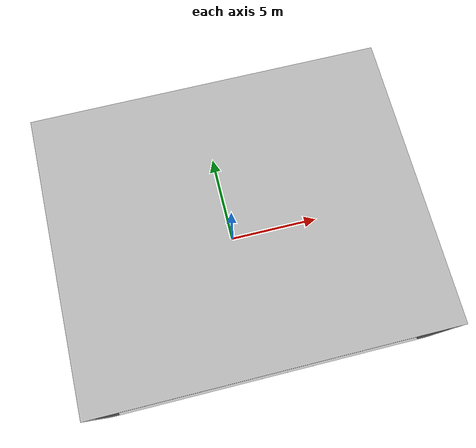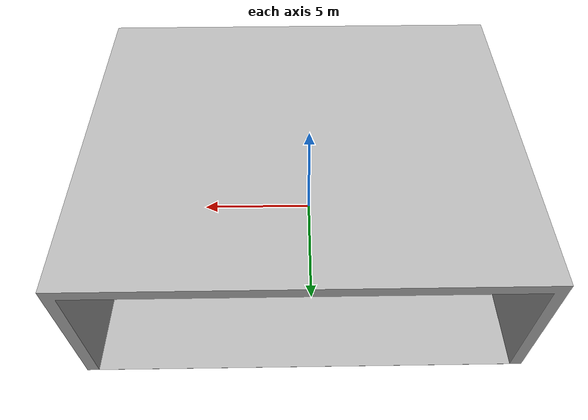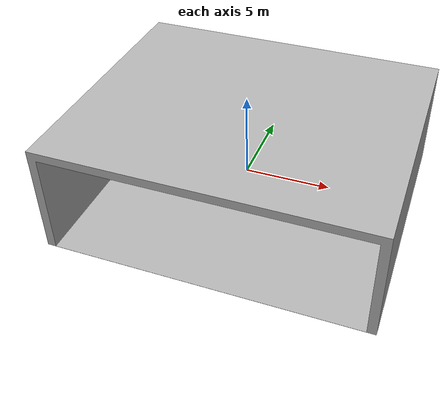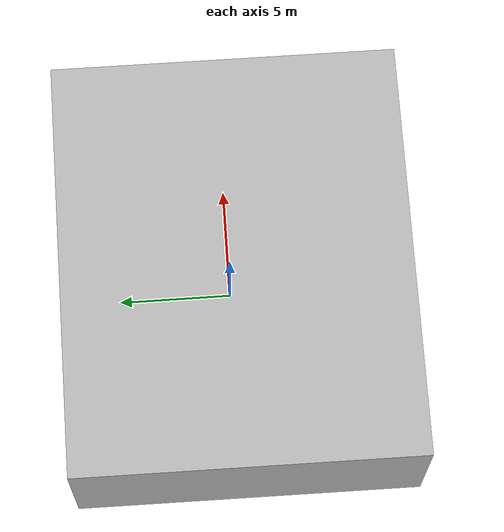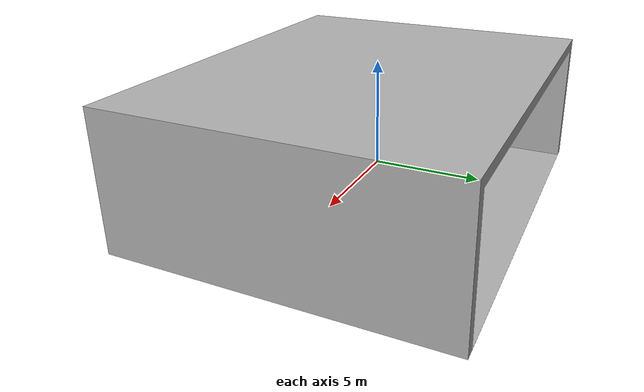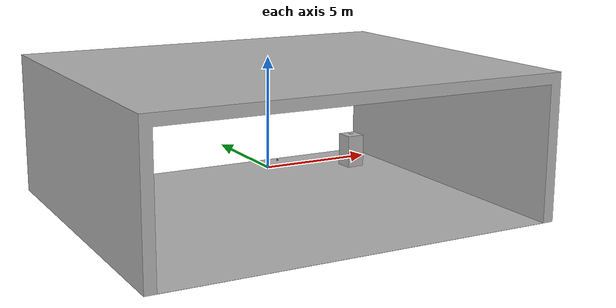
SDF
<sdf version="1.9">
 <world name="iris_runway">
  <physics name="1ms" type="bullet">
   <max_step_size>0.001</max_step_size>
   <real_time_factor>1.0</real_time_factor>
  </physics>
  <plugin filename="gz-sim-physics-system" name="gz::sim::systems::Physics"/>
  <plugin filename="gz-sim-sensors-system" name="gz::sim::systems::Sensors">
   <render_engine>ogre2</render_engine>
  </plugin>
  <plugin filename="gz-sim-user-commands-system" name="gz::sim::systems::UserCommands"/>
  <plugin filename="gz-sim-scene-broadcaster-system" name="gz::sim::systems::SceneBroadcaster"/>
  <plugin filename="gz-sim-imu-system" name="gz::sim::systems::Imu"/>
  <plugin filename="gz-sim-navsat-system" name="gz::sim::systems::NavSat"/>
  <scene><ambient>1.0 1.0 1.0</ambient><background>0.8 0.8 0.8</background><grid>false</grid></scene>
  <spherical_coordinates>
   <latitude_deg>-35.363262</latitude_deg>
   <longitude_deg>149.165237</longitude_deg>
   <elevation>584</elevation>
   <heading_deg>0</heading_deg>
   <surface_model>EARTH_WGS84</surface_model>
  </spherical_coordinates>
  <atmosphere type="adiabatic">
   <temperature>0</temperature>
   <temperature_gradient>0.1</temperature_gradient>
  </atmosphere>
  <light type="directional" name="sun">
   <pose>0 0 10 0 0 0</pose>
   <diffuse>0.8 0.8 0.8 1</diffuse>
   <specular>0.8 0.8 0.8 1</specular>
   <attenuation>
    <range>1000</range>
    <constant>0.9</constant>
    <linear>0.01</linear>
    <quadratic>0.001</quadratic>
   </attenuation>
   <direction>-0.5 0.1 -0.9</direction>
  </light>
  <include><uri>model://aruco_landing_platform</uri><pose degrees="true">5 1 -0.7 0 0 2</pose></include>
  <include><uri>model://fire</uri><pose degrees="true">1 1 0 0 0 0</pose></include>
  <include><uri>model://factory</uri><pose degrees="true">-9 -8 -1.73 0 0 0</pose></include>
 </world>
</sdf>

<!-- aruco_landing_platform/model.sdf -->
<sdf version="1.9">
  <model name="aruco_landing_platform">
    <static>false</static>
    <link name="link">
      <collision name="collision">
        <pose>0 0 0.75 0 0 0</pose>
        <geometry>
          <box>
            <size>0.83 0.83 1.5</size> <!-- 長寬高分別為10m x 10m x 1.5m -->
          </box>
        </geometry>
      </collision>
      <visual name="rectangle">
        <pose>0 0 0.75 0 0 0</pose>
        <geometry>
          <box>
            <size>0.83 0.83 1.5</size>
          </box>
        </geometry>
        <material>
          <ambient>0.7 0.7 0.7 1</ambient>
          <diffuse>0.7 0.7 0.7 1</diffuse>
          <specular>0.1 0.1 0.1 1</specular>
        </material>
      </visual>
      <!-- 地板 -->

      <!-- 10cm x 10cm 的 Aruco 圖片 -->
      <visual name="aruco_10x10">
        <pose>0 -0.116 1.53 0 0 0</pose> <!-- 位置：距離地面高度 1.53m -->
        <geometry>
          <plane>
            <normal>0 0 1</normal>
            <size>0.03 0.03</size> <!-- 平面的尺寸為10cm x 10cm -->
          </plane>
        </geometry>
        <material>
          <ambient>0.8 0.8 0.8 1</ambient>
          <diffuse>0.8 0.8 0.8 1</diffuse>
          <specular>0.1 0.1 0.1 1</specular>
          <pbr>
            <metal>
              <albedo_map>materials/textures/6x6_ID_6.png</albedo_map>
              <roughness>0.6</roughness>
              <metalness>0</metalness>
            </metal>
          </pbr>
        </material>
      </visual>

      <!-- 20cm x 20cm 的 Aruco 圖片 -->
      <visual name="aruco_20x20">
        <pose>0 0 1.53 0 0 0</pose> <!-- 位置：距離中心右邊20cm，距離地面高度 1.53m -->
        <geometry>
          <plane>
            <normal>0 0 1</normal>
            <size>0.186 0.186</size> <!-- 平面的尺寸為20cm x 20cm -->
          </plane>
        </geometry>
        <material>
          <ambient>0.8 0.8 0.8 1</ambient>
          <diffuse>0.8 0.8 0.8 1</diffuse>
          <specular>0.1 0.1 0.1 1</specular>
          <pbr>
            <metal>
              <albedo_map>materials/textures/6x6_ID_0.png</albedo_map>
              <roughness>0.6</roughness>
              <metalness>0</metalness>
            </metal>
          </pbr>
        </material>
      </visual>
    </link>
  </model>
</sdf>

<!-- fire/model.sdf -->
<sdf version="1.6">
  <model name="fire">
    <pose>-1 1 0.5 0 0 0</pose>
    <link name="box_link">
      <inertial>
        <inertia>
          <ixx>1</ixx>
          <ixy>0</ixy>
          <ixz>0</ixz>
          <iyy>1</iyy>
          <iyz>0</iyz>
          <izz>1</izz>
        </inertia>
        <mass>1.0</mass>
      </inertial>
      <collision name="box_collision">
        <geometry>
          <box>
            <size>0.05 0.05 0.05</size>
          </box>
        </geometry>
      </collision>
      <visual name="box_visual">
        <geometry>
          <box>
            <size>0.05 0.05 0.05</size>
          </box>
        </geometry>
        <material>
          <ambient>1 0 0 1</ambient>
          <diffuse>1 0 0 1</diffuse>
          <specular>1 0 0 1</specular>
        </material>
        <plugin filename="ignition-gazebo-thermal-system" name="gz::sim::systems::Thermal">
          <temperature>373</temperature>
        </plugin>
      </visual>
    </link>
  </model>
</sdf>

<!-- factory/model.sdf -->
<sdf version="1.9">
  <model name="factory">
    <static>true</static>
    <link name="link">
      <!-- 碰撞元素 -->
      <collision name="collision">
        <geometry>
          <mesh>
            <uri>factory_meter.stl</uri>
          </mesh>
        </geometry>
      </collision>
      <!-- 視覺元素 -->
      <visual name="visual">
        <geometry>
          <mesh>
            <uri>6m_hight.stl</uri>
          </mesh>
        </geometry>
        <material>
          <ambient>0.7 0.7 0.7 1</ambient>
          <diffuse>0.7 0.7 0.7 1</diffuse>
          <specular>0.1 0.1 0.1 1</specular>
        </material>
      </visual>
    </link>
  </model>
</sdf>
